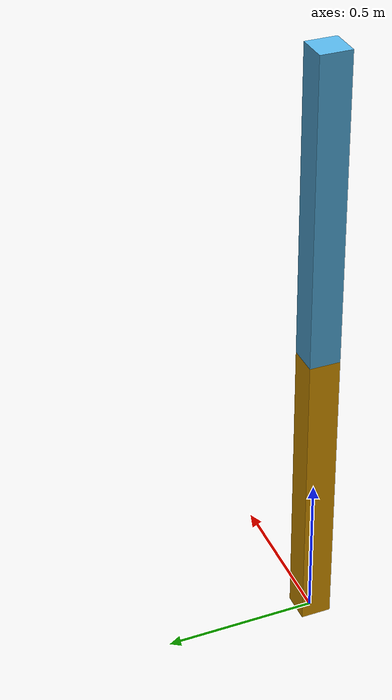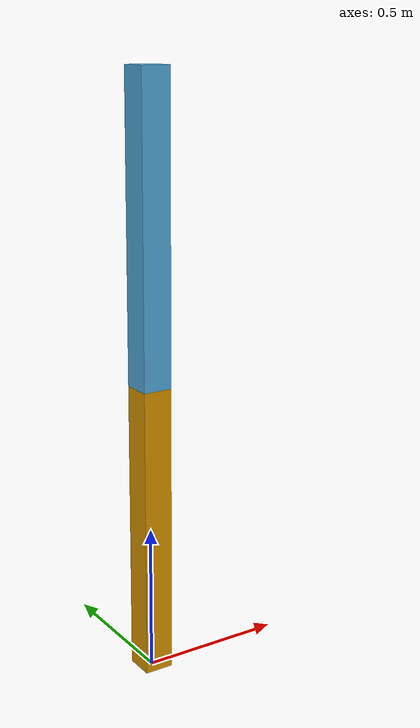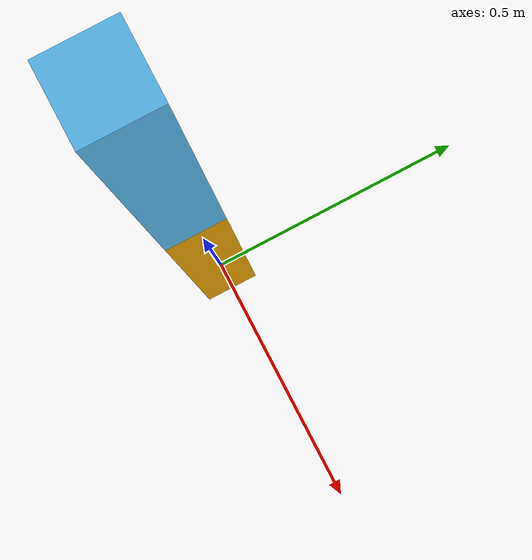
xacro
<robot name="simple" xmlns:xacro="http://www.ros.org/wiki/xacro">

    <xacro:include filename="$(find week04_description)/urdf/mylink-v2.xacro"/>

    <xacro:mylink link_name="world"/>
    <xacro:mylink link_name="tool"/>

    <joint name="q1" type="revolute">
        <origin xyz="0 0 1" rpy=" 0 0 0"/>
        <parent link="world"/>
        <child link="tool"/>
        <axis xyz="0 0 1"/>
        <limit lower="-1" upper="1" effort="1" velocity="1"/>
    </joint>
</robot>

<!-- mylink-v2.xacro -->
<robot name="mylink" xmlns:xacro="http://www.ros.org/wiki/xacro">

    <xacro:macro name="mylink" params="link_name">
        <link name="${link_name}">
            <visual>
                <origin xyz="0 0 0.5" rpy="0 0 0"/>
                <geometry>
                    <box size="0.1 0.1 1"/>
                </geometry>
            </visual>
        </link>
    </xacro:macro>
<!-- instead of repeating same code for different links, we can reuse the code like above -->

</robot>
